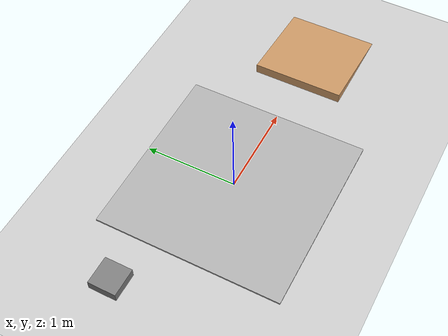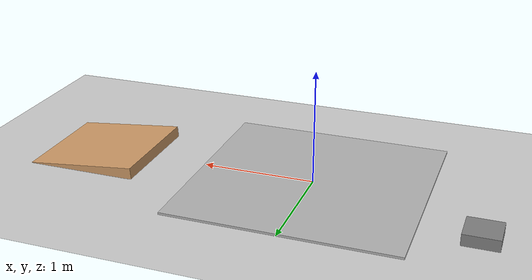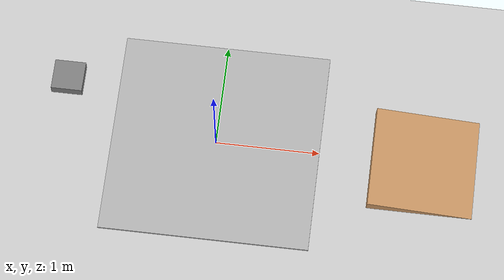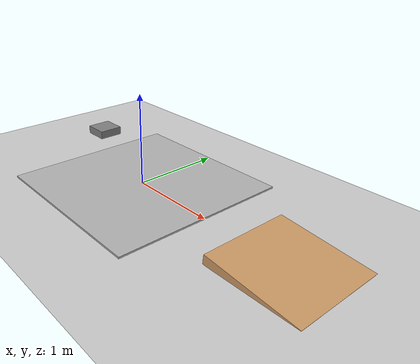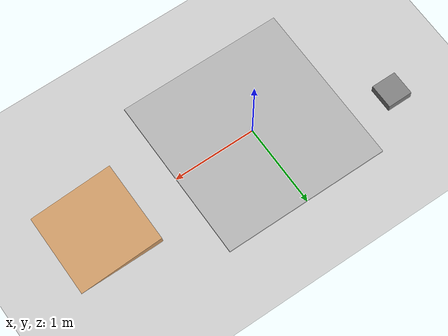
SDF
<?xml version="1.0" ?>
<sdf version="1.6">
  <world name="balance_control_world">
    <!-- Include the sun -->
    <include>
      <uri>model://sun</uri>
    </include>

    <!-- Include ground plane -->
    <include>
      <uri>model://ground_plane</uri>
    </include>

    <!-- Add some obstacles for balance challenge -->
    <!-- Small platform to test balance -->
    <model name="balance_platform">
      <pose>0 0 0 0 0 0</pose>
      <link name="platform_link">
        <pose>0 0 0.01 0 0 0</pose>
        <collision name="collision">
          <geometry>
            <box>
              <size>2 2 0.02</size>
            </box>
          </geometry>
        </collision>
        <visual name="visual">
          <geometry>
            <box>
              <size>2 2 0.02</size>
            </box>
          </geometry>
          <material>
            <ambient>0.5 0.5 0.5 1</ambient>
            <diffuse>0.7 0.7 0.7 1</diffuse>
          </material>
        </visual>
        <inertial>
          <mass>100.0</mass>
          <inertia>
            <ixx>33.36</ixx>
            <ixy>0</ixy>
            <ixz>0</ixz>
            <iyy>33.36</iyy>
            <iyz>0</iyz>
            <izz>66.68</izz>
          </inertia>
        </inertial>
      </link>
    </model>

    <!-- Add a slight incline to challenge balance -->
    <model name="incline_ramp">
      <pose>2 0 0 0 0.1 0</pose> <!-- 0.1 rad ≈ 5.7 deg incline -->
      <link name="ramp_link">
        <pose>0 0 0 0 0 0</pose>
        <collision name="collision">
          <geometry>
            <box>
              <size>1 1 0.1</size>
            </box>
          </geometry>
        </collision>
        <visual name="visual">
          <geometry>
            <box>
              <size>1 1 0.1</size>
            </box>
          </geometry>
          <material>
            <ambient>0.6 0.4 0.2 1</ambient>
            <diffuse>0.8 0.6 0.4 1</diffuse>
          </material>
        </visual>
        <inertial>
          <mass>50.0</mass>
          <inertia>
            <ixx>4.33</ixx>
            <ixy>0</ixy>
            <ixz>0</ixz>
            <iyy>4.33</iyy>
            <iyz>0</iyz>
            <izz>8.33</izz>
          </inertia>
        </inertial>
      </link>
    </model>

    <!-- Add a small step to challenge balance recovery -->
    <model name="step_obstacle">
      <pose>-1.5 0.5 0 0 0 0</pose>
      <link name="step_link">
        <pose>0 0 0.05 0 0 0</pose>
        <collision name="collision">
          <geometry>
            <box>
              <size>0.3 0.3 0.1</size>
            </box>
          </geometry>
        </collision>
        <visual name="visual">
          <geometry>
            <box>
              <size>0.3 0.3 0.1</size>
            </box>
          </geometry>
          <material>
            <ambient>0.3 0.3 0.3 1</ambient>
            <diffuse>0.5 0.5 0.5 1</diffuse>
          </material>
        </visual>
        <inertial>
          <mass>10.0</mass>
          <inertia>
            <ixx>0.158</ixx>
            <ixy>0</ixy>
            <ixz>0</ixz>
            <iyy>0.158</iyy>
            <iyz>0</iyz>
            <izz>0.158</izz>
          </inertia>
        </inertial>
      </link>
    </model>

    <!-- Add some lighting -->
    <light name="ambient_light" type="directional">
      <pose>0 0 10 0 0 0</pose>
      <diffuse>0.8 0.8 0.8 1</diffuse>
      <specular>0.2 0.2 0.2 1</specular>
      <attenuation>
        <range>1000</range>
        <constant>0.9</constant>
        <linear>0.01</linear>
        <quadratic>0.001</quadratic>
      </attenuation>
      <direction>-0.3 -0.3 -0.9</direction>
    </light>

    <!-- Physics parameters -->
    <physics name="1ms" type="ode">
      <max_step_size>0.001</max_step_size>
      <real_time_factor>1</real_time_factor>
      <real_time_update_rate>1000</real_time_update_rate>
      <gravity>0 0 -9.8</gravity>
    </physics>
  </world>
</sdf>
